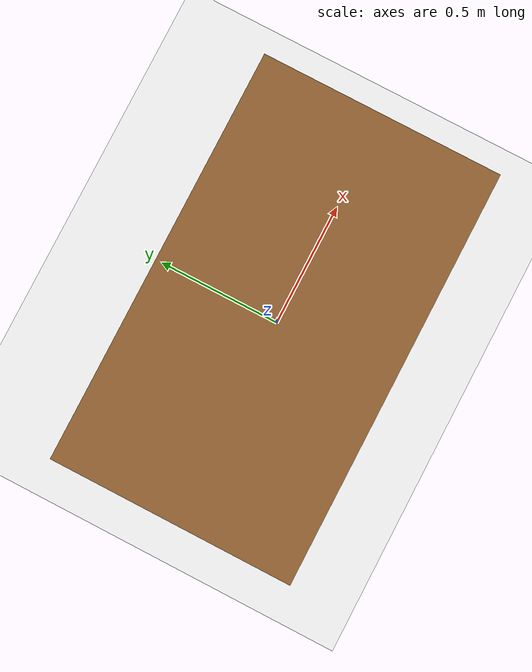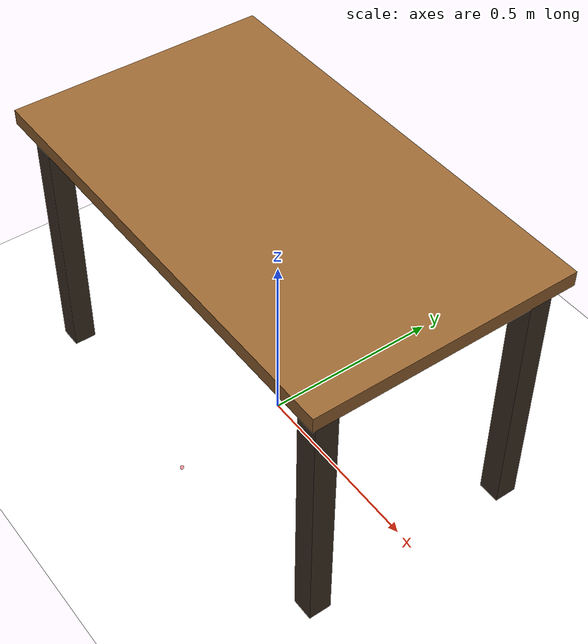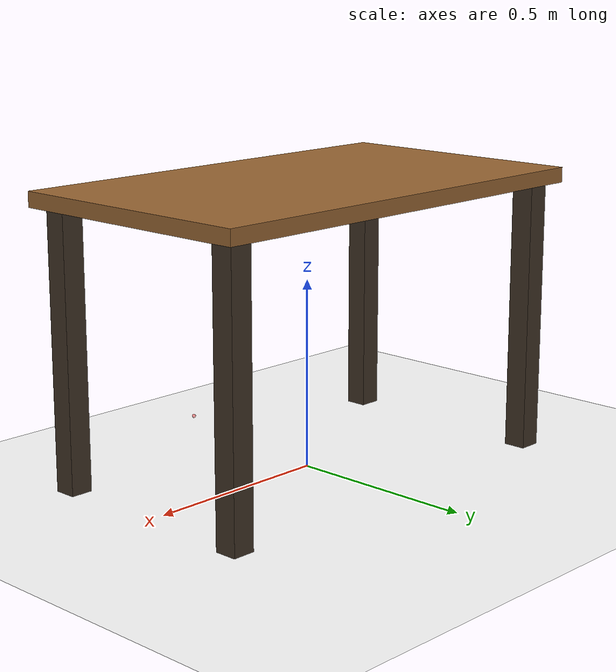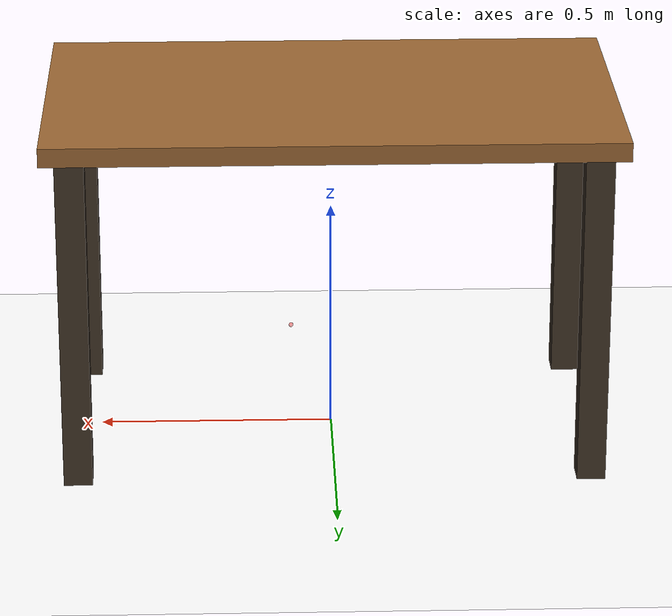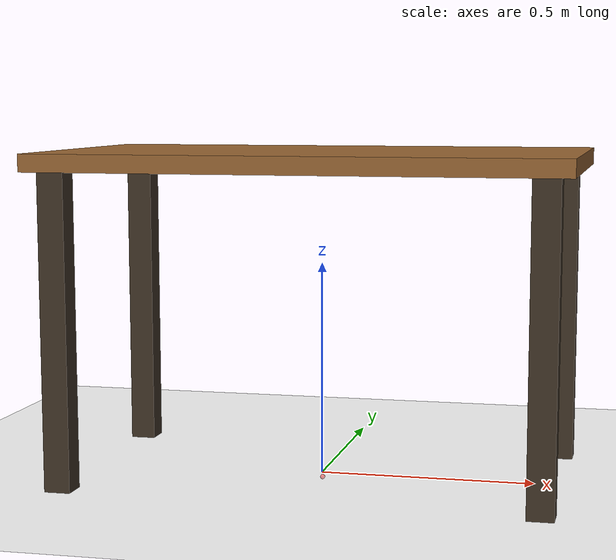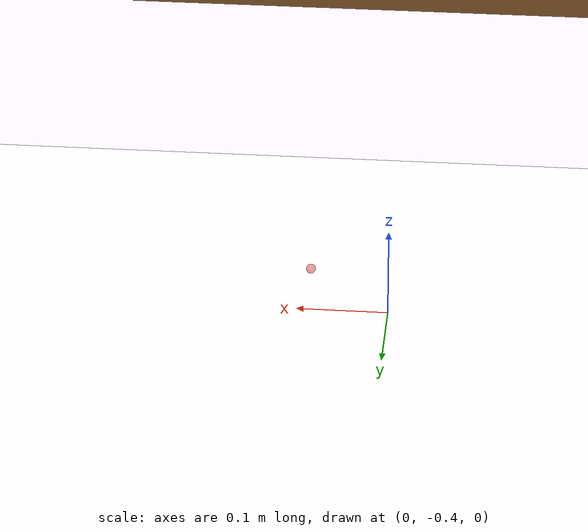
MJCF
<mujoco model="t_block_dual">
  <visual>
  <quality shadowsize="0"/>
  </visual>

  <asset>
    <!-- Checker texture (dark gray / light gray) -->
    <texture name="tex_floor_checker" type="2d" builtin="checker"
             width="512" height="512"
             rgb1="0.90 0.90 0.90" rgb2="0.72 0.72 0.72"/>

    <!-- Material using that texture -->
    <material name="mat_floor_checker"
              texture="tex_floor_checker"
              texrepeat="20 20" texuniform="true"
              reflectance="0.05" shininess="0.2" specular="0.1"
              rgba="1 1 1 1"/>
  </asset>
  <compiler angle="radian"/>
  <option timestep="0.01"/>
  <default>
    <geom friction="0.5 0.005 0.0001" density="1000"/>
  </default>
  <worldbody>
    <light name="scene_light" pos="0 0 1.5" dir="0 0 -1" directional="true"/>
    <geom name="floor" type="plane" size="50 50 0.1" pos="0 0 0" material="mat_floor_checker" rgba="1 1 1 1"/>

    <body name="T_siconos" pos="0 0 0.0">
      <freejoint name="root_siconos"/>
      <geom name="table_top_s" type="box"
            size="0.60 0.35 0.02"
            pos="0 0 0.74"
            rgba="0.6 0.4 0.2 1"
            contype="0" conaffinity="0"/>

      <geom name="table_leg_fl_s" type="box"
            size="0.03 0.03 0.36"
            pos=" 0.54  0.29  0.36"
            rgba="0.25 0.2 0.15 1"
            contype="0" conaffinity="0"/>
      <geom name="table_leg_fr_s" type="box"
            size="0.03 0.03 0.36"
            pos=" 0.54 -0.29  0.36"
            rgba="0.25 0.2 0.15 1"
            contype="0" conaffinity="0"/>
      <geom name="table_leg_bl_s" type="box"
            size="0.03 0.03 0.36"
            pos="-0.54  0.29  0.36"
            rgba="0.25 0.2 0.15 1"
            contype="0" conaffinity="0"/>
      <geom name="table_leg_br_s" type="box"
            size="0.03 0.03 0.36"
            pos="-0.54 -0.29  0.36"
            rgba="0.25 0.2 0.15 1"
            contype="0" conaffinity="0"/>
    </body>

    <body name="T_mujoco" pos="0 0 0.3">
      <freejoint name="root_mujoco"/>
      <geom name="table_top_m" type="box"
            size="0.60 0.35 0.02"
            pos="0 0 0.74"
            rgba="0.6 0.4 0.2 0.0"/>

      <geom name="table_leg_fl_m" type="box"
            size="0.03 0.03 0.36"
            pos=" 0.54  0.29  0.36"
            rgba="0.25 0.2 0.15 0.0"/>
      <geom name="table_leg_fr_m" type="box"
            size="0.03 0.03 0.36"
            pos=" 0.54 -0.29  0.36"
            rgba="0.25 0.2 0.15 0.0"/>
      <geom name="table_leg_bl_m" type="box"
            size="0.03 0.03 0.36"
            pos="-0.54  0.29  0.36"
            rgba="0.25 0.2 0.15 0.0"/>
      <geom name="table_leg_br_m" type="box"
            size="0.03 0.03 0.36"
            pos="-0.54 -0.29  0.36"
            rgba="0.25 0.2 0.15 0.0"/>
    </body>

    <body name="target_mocap" mocap="true" pos="0.08 -0.35 0.08">

      <geom type="sphere" size="0.005" rgba="1 0 0 0.4" contype="0" conaffinity="0"/>
    </body>
  </worldbody>

</mujoco>
